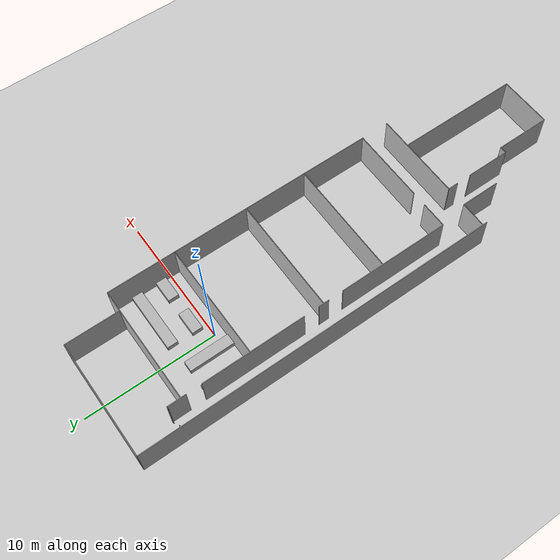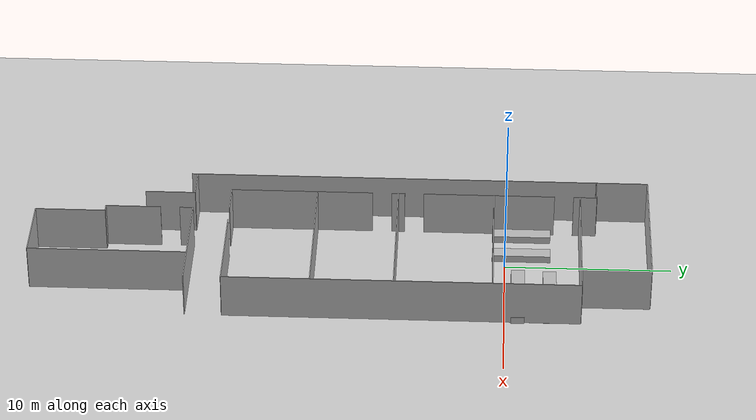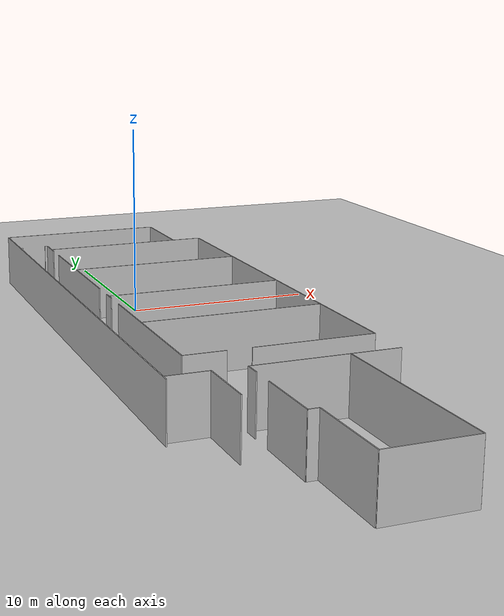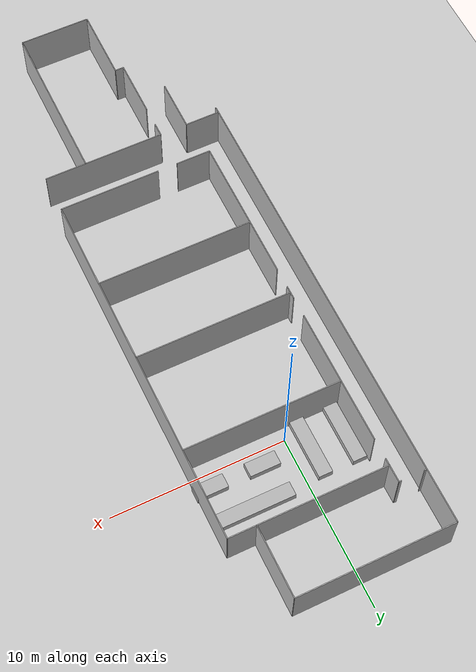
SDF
<?xml version="1.0"?>
<sdf version="1.7">
  <world name="car">
    <include><uri>model://sun</uri></include>
    <include><uri>model://ground_plane</uri></include>

    <model name='wall_sx'>
      <static>1</static>
      <link name='link'>
        <pose>-0.6000000000000001 8.6 1.4 0 -0 0</pose>
        <collision name='collision'>
          <geometry>
            <box>
              <size>9 0.05 2.8</size>
            </box>
          </geometry>
        </collision>
        <visual name='visual'>
          <geometry>
            <box>
              <size>9 0.05 2.8</size>
            </box>
          </geometry>
        </visual>
      </link>
    </model>

    <model name='wall_dx'>
      <static>1</static>
      <link name='link'>
        <pose>1.05 -28.25 1.4 0 -0 0</pose>
        <collision name='collision'>
          <geometry>
            <box>
              <size>4.1 0.05 2.8</size>
            </box>
          </geometry>
        </collision>
        <visual name='visual'>
          <geometry>
            <box>
              <size>4.1 0.05 2.8</size>
            </box>
          </geometry>
        </visual>
      </link>
    </model>

    <model name='wall_dx_2'>
      <static>1</static>
      <link name='link'>
        <pose>-1.25 -24.05 1.4 0 -0 0</pose>
        <collision name='collision'>
          <geometry>
            <box>
              <size>0.5 0.05 2.8</size>
            </box>
          </geometry>
        </collision>
        <visual name='visual'>
          <geometry>
            <box>
              <size>0.5 0.05 2.8</size>
            </box>
          </geometry>
        </visual>
      </link>
    </model>

    <model name='wall_sopra'>
      <static>1</static>
      <link name='link'>
        <pose>5.5 -6.05 1.4 0 -0 1.57</pose>
        <collision name='collision'>
          <geometry>
            <box>
              <size>21.1 0.05 2.8</size>
            </box>
          </geometry>
        </collision>
        <visual name='visual'>
          <geometry>
            <box>
              <size>21.1 0.05 2.8</size>
            </box>
          </geometry>
        </visual>
      </link>
    </model>

    <model name='wall_sopra_1'>
      <static>1</static>
      <link name='link'>
        <pose>3.9 6.550000000000001 1.4 0 -0 1.57</pose>
        <collision name='collision'>
          <geometry>
            <box>
              <size>4.1 0.05 2.8</size>
            </box>
          </geometry>
        </collision>
        <visual name='visual'>
          <geometry>
            <box>
              <size>4.1 0.05 2.8</size>
            </box>
          </geometry>
        </visual>
      </link>
    </model>

    <model name='wall_sopra_2'>
      <static>1</static>
      <link name='link'>
        <pose>-3.0999999999999996 -20.3 1.4 0 -0 1.57</pose>
        <collision name='collision'>
          <geometry>
            <box>
              <size>3 0.05 2.8</size>
            </box>
          </geometry>
        </collision>
        <visual name='visual'>
          <geometry>
            <box>
              <size>3 0.05 2.8</size>
            </box>
          </geometry>
        </visual>
      </link>
    </model>

    <model name='wall_sopra_3'>
      <static>1</static>
      <link name='link'>
        <pose>3.1 -23.525 1.4 0 -0 1.57</pose>
        <collision name='collision'>
          <geometry>
            <box>
              <size>9.45 0.05 2.8</size>
            </box>
          </geometry>
        </collision>
        <visual name='visual'>
          <geometry>
            <box>
              <size>9.45 0.05 2.8</size>
            </box>
          </geometry>
        </visual>
      </link>
    </model>

    <model name='corridor'>
      <static>1</static>
      <link name='link'>
        <pose>-5.1 -5.275 1.4 0 -0 1.57</pose>
        <collision name='collision'>
          <geometry>
            <box>
              <size>27.75 0.05 2.8</size>
            </box>
          </geometry>
        </collision>
        <visual name='visual'>
          <geometry>
            <box>
              <size>27.75 0.05 2.8</size>
            </box>
          </geometry>
        </visual>
      </link>
    </model>

    <model name='corridor_vertical'>
      <static>1</static>
      <link name='link'>
        <pose>-4.1 -18.8 1.4 0 -0 0</pose>
        <collision name='collision'>
          <geometry>
            <box>
              <size>2 0.05 2.8</size>
            </box>
          </geometry>
        </collision>
        <visual name='visual'>
          <geometry>
            <box>
              <size>2 0.05 2.8</size>
            </box>
          </geometry>
        </visual>
      </link>
    </model>

    <model name='i'>
      <static>1</static>
      <link name='link'>
        <pose>1.0 4.5 1.4 0 -0 0</pose>
        <collision name='collision'>
          <geometry>
            <box>
              <size>9 0.05 2.8</size>
            </box>
          </geometry>
        </collision>
        <visual name='visual'>
          <geometry>
            <box>
              <size>9 0.05 2.8</size>
            </box>
          </geometry>
        </visual>
      </link>
    </model>

    <model name='i_2'>
      <static>1</static>
      <link name='link'>
        <pose>-3.575 5.5 1.4 0 -0 0</pose>
        <collision name='collision'>
          <geometry>
            <box>
              <size>0.15 0.05 2.8</size>
            </box>
          </geometry>
        </collision>
        <visual name='visual'>
          <geometry>
            <box>
              <size>0.15 0.05 2.8</size>
            </box>
          </geometry>
        </visual>
      </link>
    </model>

    <model name='i_3'>
      <static>1</static>
      <link name='link'>
        <pose>-5.025 5.5 1.4 0 -0 0</pose>
        <collision name='collision'>
          <geometry>
            <box>
              <size>0.15 0.05 2.8</size>
            </box>
          </geometry>
        </collision>
        <visual name='visual'>
          <geometry>
            <box>
              <size>0.15 0.05 2.8</size>
            </box>
          </geometry>
        </visual>
      </link>
    </model>

    <model name='h'>
      <static>1</static>
      <link name='link'>
        <pose>1.0 -0.7000000000000002 1.4 0 -0 0</pose>
        <collision name='collision'>
          <geometry>
            <box>
              <size>9 0.05 2.8</size>
            </box>
          </geometry>
        </collision>
        <visual name='visual'>
          <geometry>
            <box>
              <size>9 0.05 2.8</size>
            </box>
          </geometry>
        </visual>
      </link>
    </model>

    <model name='h_oriz'>
      <static>1</static>
      <link name='link'>
        <pose>-3.5 4.800000000000001 1.4 0 -0 1.57</pose>
        <collision name='collision'>
          <geometry>
            <box>
              <size>1.4 0.05 2.8</size>
            </box>
          </geometry>
        </collision>
        <visual name='visual'>
          <geometry>
            <box>
              <size>1.4 0.05 2.8</size>
            </box>
          </geometry>
        </visual>
      </link>
    </model>

    <model name='j'>
      <static>1</static>
      <link name='link'>
        <pose>1.0 -6.5 1.4 0 -0 0</pose>
        <collision name='collision'>
          <geometry>
            <box>
              <size>9 0.05 2.8</size>
            </box>
          </geometry>
        </collision>
        <visual name='visual'>
          <geometry>
            <box>
              <size>9 0.05 2.8</size>
            </box>
          </geometry>
        </visual>
      </link>
    </model>

    <model name='j_h_oriz'>
      <static>1</static>
      <link name='link'>
        <pose>-3.5 -1.0 1.4 0 -0 1.57</pose>
        <collision name='collision'>
          <geometry>
            <box>
              <size>7.9 0.05 2.8</size>
            </box>
          </geometry>
        </collision>
        <visual name='visual'>
          <geometry>
            <box>
              <size>7.9 0.05 2.8</size>
            </box>
          </geometry>
        </visual>
      </link>
    </model>

    <model name='j_oriz'>
      <static>1</static>
      <link name='link'>
        <pose>-3.5 -6.5 1.4 0 -0 1.57</pose>
        <collision name='collision'>
          <geometry>
            <box>
              <size>0.8 0.05 2.8</size>
            </box>
          </geometry>
        </collision>
        <visual name='visual'>
          <geometry>
            <box>
              <size>0.8 0.05 2.8</size>
            </box>
          </geometry>
        </visual>
      </link>
    </model>

    <model name='k'>
      <static>1</static>
      <link name='link'>
        <pose>1.0 -11.4 1.4 0 -0 0</pose>
        <collision name='collision'>
          <geometry>
            <box>
              <size>9 0.05 2.8</size>
            </box>
          </geometry>
        </collision>
        <visual name='visual'>
          <geometry>
            <box>
              <size>9 0.05 2.8</size>
            </box>
          </geometry>
        </visual>
      </link>
    </model>

    <model name='pratica'>
      <static>1</static>
      <link name='link'>
        <pose>2.575 -16.6 1.4 0 -0 0</pose>
        <collision name='collision'>
          <geometry>
            <box>
              <size>5.85 0.05 2.8</size>
            </box>
          </geometry>
        </collision>
        <visual name='visual'>
          <geometry>
            <box>
              <size>5.85 0.05 2.8</size>
            </box>
          </geometry>
        </visual>
      </link>
    </model>

    <model name='pratica2'>
      <static>1</static>
      <link name='link'>
        <pose>-2.5 -16.6 1.4 0 -0 0</pose>
        <collision name='collision'>
          <geometry>
            <box>
              <size>2 0.05 2.8</size>
            </box>
          </geometry>
        </collision>
        <visual name='visual'>
          <geometry>
            <box>
              <size>2 0.05 2.8</size>
            </box>
          </geometry>
        </visual>
      </link>
    </model>

    <model name='k_pratica_oriz'>
      <static>1</static>
      <link name='link'>
        <pose>-3.5 -12.325 1.4 0 -0 1.57</pose>
        <collision name='collision'>
          <geometry>
            <box>
              <size>8.55 0.05 2.8</size>
            </box>
          </geometry>
        </collision>
        <visual name='visual'>
          <geometry>
            <box>
              <size>8.55 0.05 2.8</size>
            </box>
          </geometry>
        </visual>
      </link>
    </model>

    <model name='quadrupedi'>
      <static>1</static>
      <link name='link'>
        <pose>2.0 -18.8 1.4 0 -0 0</pose>
        <collision name='collision'>
          <geometry>
            <box>
              <size>7 0.05 2.8</size>
            </box>
          </geometry>
        </collision>
        <visual name='visual'>
          <geometry>
            <box>
              <size>7 0.05 2.8</size>
            </box>
          </geometry>
        </visual>
      </link>
    </model>

    <model name='quadrupedi_oriz1'>
      <static>1</static>
      <link name='link'>
        <pose>-1.5 -19.2 1.4 0 -0 1.57</pose>
        <collision name='collision'>
          <geometry>
            <box>
              <size>0.8 0.05 2.8</size>
            </box>
          </geometry>
        </collision>
        <visual name='visual'>
          <geometry>
            <box>
              <size>0.8 0.05 2.8</size>
            </box>
          </geometry>
        </visual>
      </link>
    </model>

    <model name='quadrupedi_oriz2'>
      <static>1</static>
      <link name='link'>
        <pose>-1.5 -22.4 1.4 0 -0 1.57</pose>
        <collision name='collision'>
          <geometry>
            <box>
              <size>3.3 0.05 2.8</size>
            </box>
          </geometry>
        </collision>
        <visual name='visual'>
          <geometry>
            <box>
              <size>3.3 0.05 2.8</size>
            </box>
          </geometry>
        </visual>
      </link>
    </model>

    <model name='quadrupedi_oriz3'>
      <static>1</static>
      <link name='link'>
        <pose>-1.0 -26.15 1.4 0 -0 1.57</pose>
        <collision name='collision'>
          <geometry>
            <box>
              <size>4.2 0.05 2.8</size>
            </box>
          </geometry>
        </collision>
        <visual name='visual'>
          <geometry>
            <box>
              <size>4.2 0.05 2.8</size>
            </box>
          </geometry>
        </visual>
      </link>
    </model>

    <model name="table1">
      <static>1</static>
      <link name="link">
        <pose>-3.0 1.0 0.0 0 0 0</pose>
        <collision name="collision">
          <geometry>
            <box>
              <size>0.8 3.5 0.8</size>
            </box>
          </geometry>
        </collision>
        <visual name="visual">
          <geometry>
            <box>
              <size>0.8 3.5 0.8</size>
            </box>
          </geometry>
        </visual>
      </link>

    </model>

    <model name="work_table_2">
        <static>1</static>
        <!-- table top -->
        <link name="table_top">
            <pose>-1.0 1.0 0.0 0 0 0</pose>
            <collision name="collision">
            <geometry>
                <box>
                <size>0.8 3.5 0.8</size>
                </box>
            </geometry>
            </collision>
            <visual name="visual">
            <geometry>
                <box>
                <size>0.8 3.5 0.8</size>
                </box>
            </geometry>
            </visual>
        </link>
    </model>

    <model name="work_table_3">
        <static>1</static>
        <link name="table_top">
            <pose>1.7 0.8 0.0 0 0 0</pose>
            <collision name="collision">
            <geometry>
                <box>
                <size>1.75 0.8 0.8</size>
                </box>
            </geometry>
            </collision>
            <visual name="visual">
            <geometry>
                <box>
                <size>1.75 0.8 0.8</size>
                </box>
            </geometry>
            </visual>
        </link>
    </model>

    <model name="work_table_4">
        <static>1</static>

        <link name="table_top">
            <pose>4.7 0.8 0.0 0 0 0</pose>
            <collision name="collision">
            <geometry>
                <box>
                <size>1.75 0.8 0.8</size>
                </box>
            </geometry>
            </collision>
            <visual name="visual">
            <geometry>
                <box>
                <size>1.75 0.8 0.8</size>
                </box>
            </geometry>
            </visual>
        </link>
    </model>

    <model name="work_table_5">
        <static>1</static>

        <link name="table_top">
            <pose>3.2 2.7 0.0 0 0 0</pose>
            <collision name="collision">
            <geometry>
                <box>
                <size>4.6 0.8 0.8</size>
                </box>
            </geometry>
            </collision>
            <visual name="visual">
            <geometry>
                <box>
                <size>4.6 0.8 0.8</size>
                </box>
            </geometry>
            </visual>
        </link>
    </model>
  </world>
</sdf>
